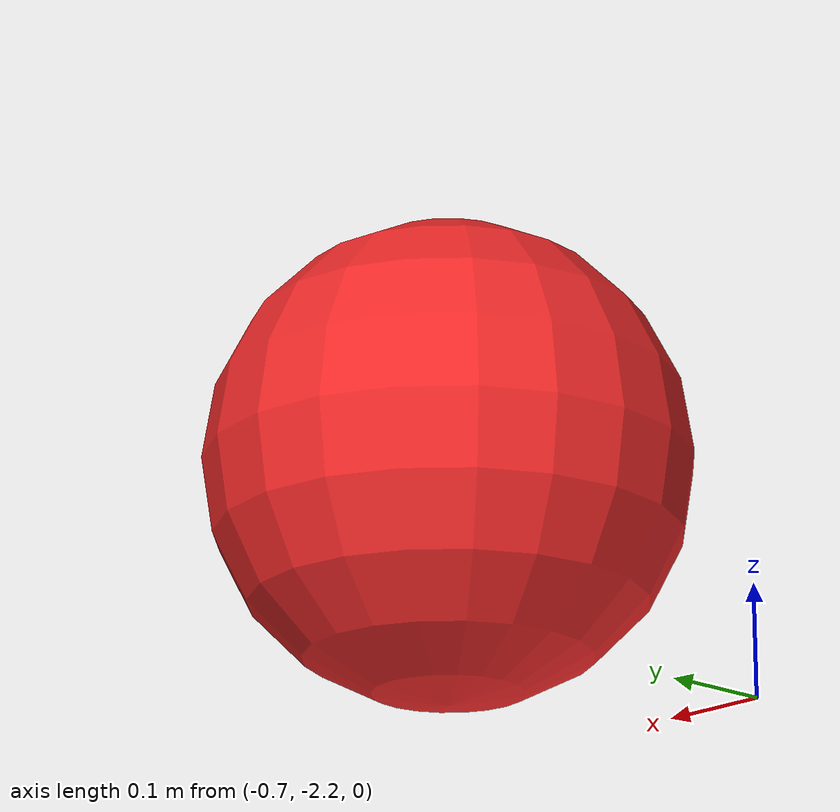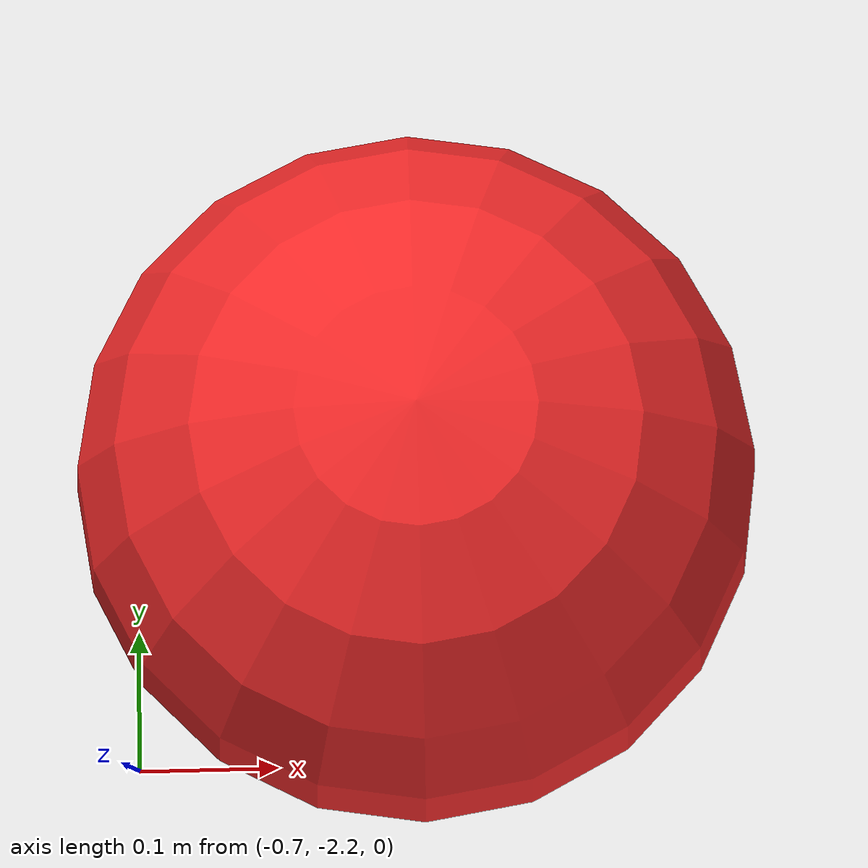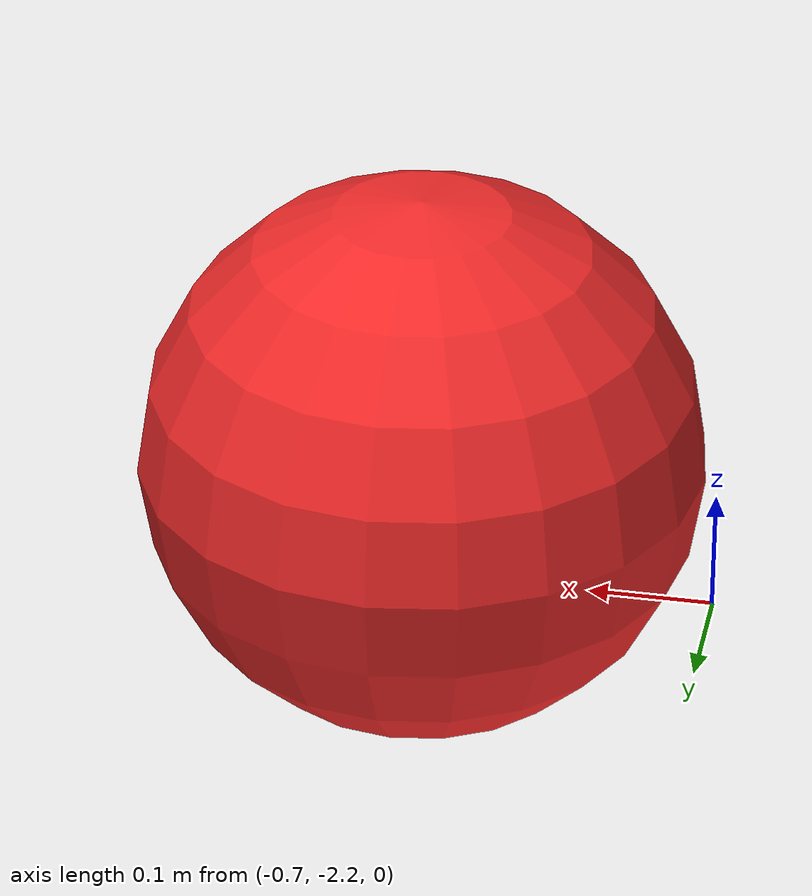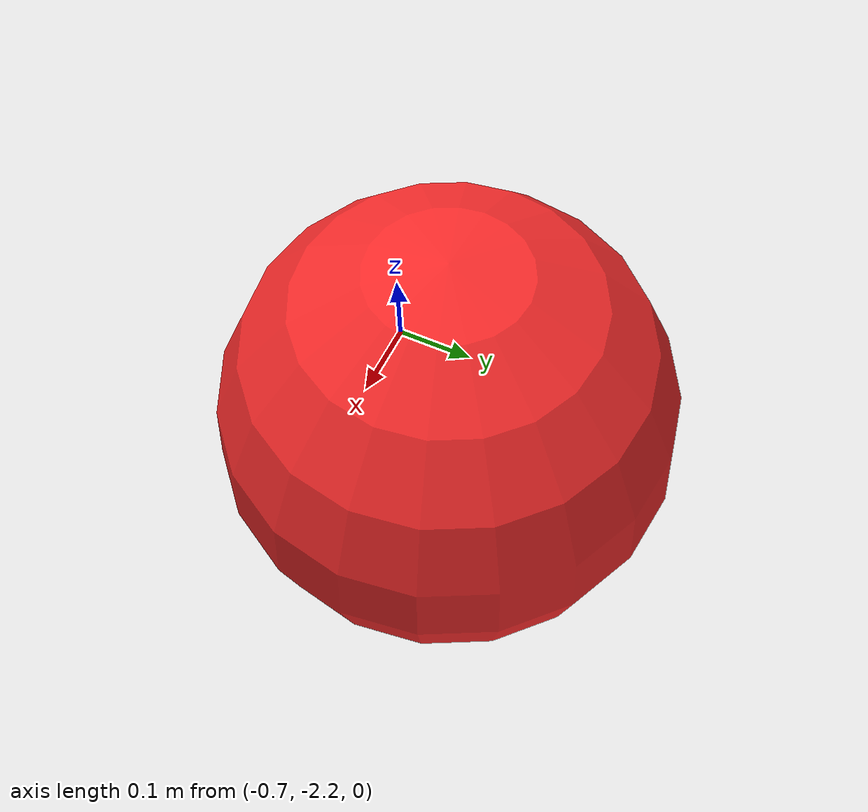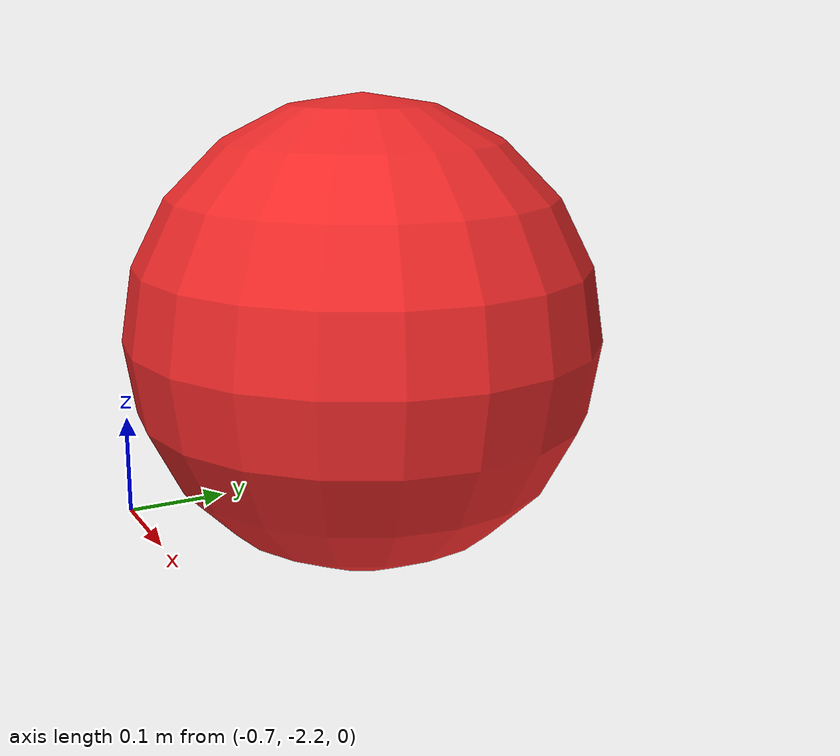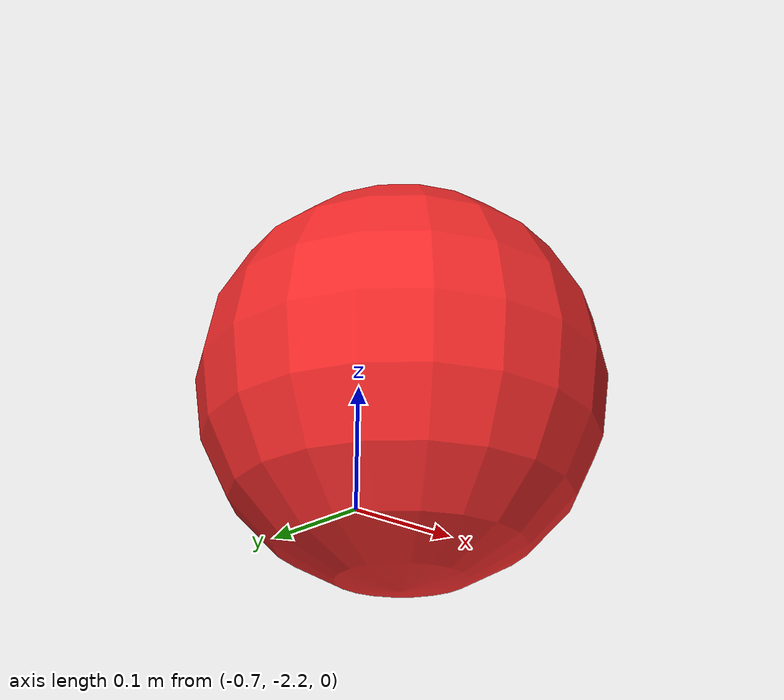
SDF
<?xml version='1.0'?>
<sdf version='1.7'>
  <model name='redball'>
    <link name='link'>
      <inertial>
        <mass>0.0790038</mass>
        <inertia>
          <ixx>0.00145461</ixx>
          <ixy>0</ixy>
          <ixz>0</ixz>
          <iyy>0.00145461</iyy>
          <iyz>0</iyz>
          <izz>0.00145461</izz>
        </inertia>
        <pose>0 0 0 0 -0 0</pose>
      </inertial>
      <self_collide>0</self_collide>
      <enable_wind>0</enable_wind>
      <kinematic>0</kinematic>
      <pose>-0.497071 -2.03533 0.216908 0 -0 0</pose>
      <gravity>0</gravity>
      <visual name='visual'>
        <geometry>
          <sphere>
            <radius>0.214546</radius>
          </sphere>
        </geometry>
        <material>
          <script>
            <name>Gazebo/Grey</name>
            <uri>file://media/materials/scripts/gazebo.material</uri>
          </script>
          <shader type='pixel'>
            <normal_map>__default__</normal_map>
          </shader>
          <ambient>1 0 0 1</ambient>
          <diffuse>1 0 0 1</diffuse>
          <specular>1 0 0 1</specular>
          <emissive>1 0 0 1</emissive>
        </material>
        <pose>0 0 0 0 -0 0</pose>
        <transparency>1</transparency>
        <cast_shadows>1</cast_shadows>
      </visual>
      <visual name='ModelPreview_1::link::visual_15'>
        <geometry>
          <sphere>
            <radius>0.214546</radius>
          </sphere>
        </geometry>
        <material>
          <script>
            <name>Gazebo/Grey</name>
            <uri>file://media/materials/scripts/gazebo.material</uri>
          </script>
          <shader type='pixel'>
            <normal_map>__default__</normal_map>
          </shader>
          <ambient>0.937 0.161 0.161 1</ambient>
          <diffuse>0.937 0.161 0.161 1</diffuse>
          <specular>0.937 0.161 0.161 1</specular>
          <emissive>0.937 0.161 0.161 1</emissive>
        </material>
        <pose>0 0 0 0 -0 0</pose>
        <transparency>0</transparency>
        <cast_shadows>1</cast_shadows>
      </visual>
      <visual name='ModelPreview_1::link::visual_1'>
        <geometry>
          <sphere>
            <radius>0.214546</radius>
          </sphere>
        </geometry>
        <material>
          <script>
            <name>Gazebo/Grey</name>
            <uri>file://media/materials/scripts/gazebo.material</uri>
          </script>
          <shader type='pixel'>
            <normal_map>__default__</normal_map>
          </shader>
          <ambient>0.937 0.161 0.161 1</ambient>
          <diffuse>0.937 0.161 0.161 1</diffuse>
          <specular>0.937 0.161 0.161 1</specular>
          <emissive>0.937 0.161 0.161 1</emissive>
        </material>
        <pose>0 0 0 0 -0 0</pose>
        <transparency>0</transparency>
        <cast_shadows>1</cast_shadows>
      </visual>
      <visual name='ModelPreview_1::link::visual_2'>
        <geometry>
          <sphere>
            <radius>0.214546</radius>
          </sphere>
        </geometry>
        <material>
          <script>
            <name>Gazebo/Grey</name>
            <uri>file://media/materials/scripts/gazebo.material</uri>
          </script>
          <shader type='pixel'>
            <normal_map>__default__</normal_map>
          </shader>
          <ambient>0.937 0.161 0.161 1</ambient>
          <diffuse>0.937 0.161 0.161 1</diffuse>
          <specular>0.937 0.161 0.161 1</specular>
          <emissive>0.937 0.161 0.161 1</emissive>
        </material>
        <pose>0 0 0 0 -0 0</pose>
        <transparency>0</transparency>
        <cast_shadows>1</cast_shadows>
      </visual>
      <visual name='ModelPreview_1::link::visual_19'>
        <geometry>
          <sphere>
            <radius>0.214546</radius>
          </sphere>
        </geometry>
        <material>
          <script>
            <name>Gazebo/Grey</name>
            <uri>file://media/materials/scripts/gazebo.material</uri>
          </script>
          <shader type='pixel'>
            <normal_map>__default__</normal_map>
          </shader>
          <ambient>0.937 0.161 0.161 1</ambient>
          <diffuse>0.937 0.161 0.161 1</diffuse>
          <specular>0.937 0.161 0.161 1</specular>
          <emissive>0.937 0.161 0.161 1</emissive>
        </material>
        <pose>0 0 0 0 -0 0</pose>
        <transparency>0</transparency>
        <cast_shadows>1</cast_shadows>
      </visual>
      <visual name='ModelPreview_1::link::visual_18'>
        <geometry>
          <sphere>
            <radius>0.214546</radius>
          </sphere>
        </geometry>
        <material>
          <script>
            <name>Gazebo/Grey</name>
            <uri>file://media/materials/scripts/gazebo.material</uri>
          </script>
          <shader type='pixel'>
            <normal_map>__default__</normal_map>
          </shader>
          <ambient>0.937 0.161 0.161 1</ambient>
          <diffuse>0.937 0.161 0.161 1</diffuse>
          <specular>0.937 0.161 0.161 1</specular>
          <emissive>0.937 0.161 0.161 1</emissive>
        </material>
        <pose>0 0 0 0 -0 0</pose>
        <transparency>0</transparency>
        <cast_shadows>1</cast_shadows>
      </visual>
      <visual name='ModelPreview_1::link::visual_17'>
        <geometry>
          <sphere>
            <radius>0.214546</radius>
          </sphere>
        </geometry>
        <material>
          <script>
            <name>Gazebo/Grey</name>
            <uri>file://media/materials/scripts/gazebo.material</uri>
          </script>
          <shader type='pixel'>
            <normal_map>__default__</normal_map>
          </shader>
          <ambient>0.937 0.161 0.161 1</ambient>
          <diffuse>0.937 0.161 0.161 1</diffuse>
          <specular>0.937 0.161 0.161 1</specular>
          <emissive>0.937 0.161 0.161 1</emissive>
        </material>
        <pose>0 0 0 0 -0 0</pose>
        <transparency>0</transparency>
        <cast_shadows>1</cast_shadows>
      </visual>
      <visual name='ModelPreview_1::link::visual_16'>
        <geometry>
          <sphere>
            <radius>0.214546</radius>
          </sphere>
        </geometry>
        <material>
          <script>
            <name>Gazebo/Grey</name>
            <uri>file://media/materials/scripts/gazebo.material</uri>
          </script>
          <shader type='pixel'>
            <normal_map>__default__</normal_map>
          </shader>
          <ambient>0.937 0.161 0.161 1</ambient>
          <diffuse>0.937 0.161 0.161 1</diffuse>
          <specular>0.937 0.161 0.161 1</specular>
          <emissive>0.937 0.161 0.161 1</emissive>
        </material>
        <pose>0 0 0 0 -0 0</pose>
        <transparency>0</transparency>
        <cast_shadows>1</cast_shadows>
      </visual>
      <collision name='collision'>
        <laser_retro>0</laser_retro>
        <max_contacts>10</max_contacts>
        <pose>0 0 0 0 -0 0</pose>
        <geometry>
          <sphere>
            <radius>0.214546</radius>
          </sphere>
        </geometry>
        <surface>
          <friction>
            <ode>
              <mu>1</mu>
              <mu2>1</mu2>
              <fdir1>0 0 0</fdir1>
              <slip1>0</slip1>
              <slip2>0</slip2>
            </ode>
            <torsional>
              <coefficient>1</coefficient>
              <patch_radius>0</patch_radius>
              <surface_radius>0</surface_radius>
              <use_patch_radius>1</use_patch_radius>
              <ode>
                <slip>0</slip>
              </ode>
            </torsional>
          </friction>
          <bounce>
            <restitution_coefficient>0</restitution_coefficient>
            <threshold>1e+06</threshold>
          </bounce>
          <contact>
            <collide_without_contact>0</collide_without_contact>
            <collide_without_contact_bitmask>1</collide_without_contact_bitmask>
            <collide_bitmask>1</collide_bitmask>
            <ode>
              <soft_cfm>0</soft_cfm>
              <soft_erp>0.2</soft_erp>
              <kp>1e+13</kp>
              <kd>1</kd>
              <max_vel>0.01</max_vel>
              <min_depth>0</min_depth>
            </ode>
            <bullet>
              <split_impulse>1</split_impulse>
              <split_impulse_penetration_threshold>-0.01</split_impulse_penetration_threshold>
              <soft_cfm>0</soft_cfm>
              <soft_erp>0.2</soft_erp>
              <kp>1e+13</kp>
              <kd>1</kd>
            </bullet>
          </contact>
        </surface>
      </collision>
    </link>
    <static>0</static>
    <allow_auto_disable>1</allow_auto_disable>
  </model>
</sdf>
